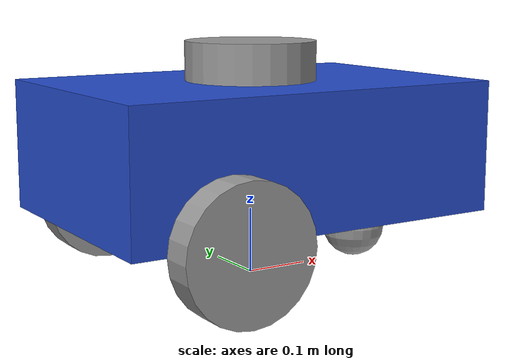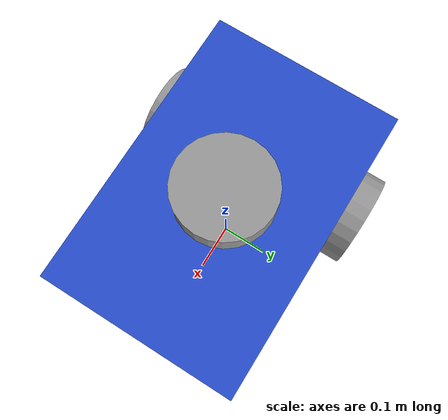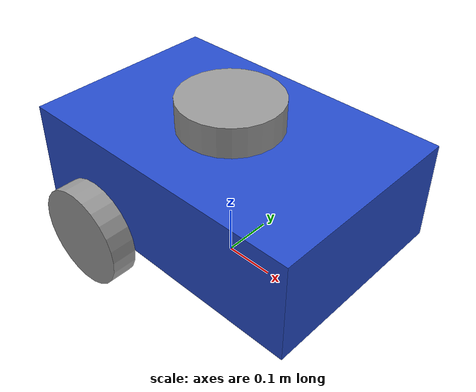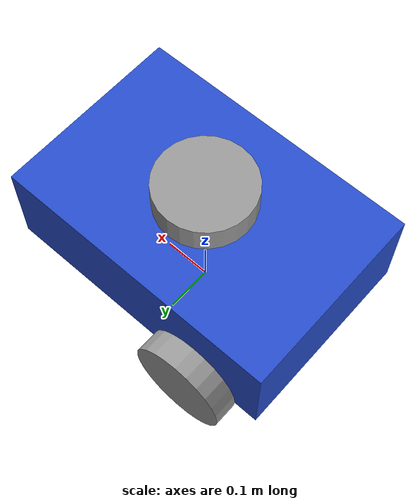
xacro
<?xml version="1.0"?>
<robot xmlns:xacro="http://www.ros.org/wiki/xacro" >

    <xacro:property name="base_length" value="0.6" />
    <xacro:property name="base_width" value="0.4" />
    <xacro:property name="base_height" value="0.2" />
    <xacro:property name="wheel_radius" value="0.1" />
    <xacro:property name="wheel_length" value="0.05" />
    <xacro:property name="scan_wheel_length" value="0.06" />

    <link name="base_footprint" />

    <link name="base_link">
        <visual>
            <geometry>
                <box size="${base_length} ${base_width} ${base_height}"/>
            </geometry>
            <origin xyz="0 0 0.1" rpy="0 0 0" />
            <material name="blue" />
        </visual>
        <collision>
            <geometry>
                <box size="${base_length} ${base_width} ${base_height}"/>
            </geometry>
            <origin xyz="0 0 0.1" rpy="0 0 0" />
        </collision>
        <xacro:box_inertia m="5.0" l="${3*base_length}" w="${3*base_width}" h="${3*base_height}"
                           xyz="0 0 0.1" rpy="0 0 0" />
    </link>

    <link name="base_scan">
        <visual>
            <geometry>
                <cylinder radius="${wheel_radius}" length="${scan_wheel_length}"/>
            </geometry>
            <origin xyz="0 0 0" rpy="0 0 0" />
            <material name="grey" />
        </visual>
        <collision>
            <geometry>
                <cylinder radius="${wheel_radius}" length="${scan_wheel_length}"/>
            </geometry>
            <origin xyz="0 0 0" rpy="0 0 0" />
        </collision>
        <xacro:wheel_inertia m="0.25" r="${3*wheel_radius}"  h="${3*scan_wheel_length}"
                             xyz="0 0 0" rpy="0 0 0" />
    </link>

    <xacro:macro name="wheel_link" params="prefix">
        <link name="${prefix}_wheel_link">
            <visual>
                <geometry>
                    <cylinder radius="${wheel_radius}" length="${wheel_length}" />
                </geometry>
                <origin xyz="0 0 0" rpy="${pi / 2.0} 0 0" />
                <material name="grey" />
            </visual>
            <collision>
                <geometry>
                    <cylinder radius="${wheel_radius}" length="${wheel_length}" />
                </geometry>
                <origin xyz="0 0 0" rpy="${pi / 2.0} 0 0" />
            </collision>
            <xacro:wheel_inertia m="1.0" r="${3*wheel_radius}" h="${3*wheel_length}"
                                 xyz="0 0 0" rpy="${pi / 2.0} 0 0" />
        </link>
    </xacro:macro>

    <xacro:wheel_link prefix="right" />
    <xacro:wheel_link prefix="left" />

    <link name="caster_wheel_link">
        <visual>
            <geometry>
                <sphere radius="${wheel_length}" />
            </geometry>
            <origin xyz="0 0 0" rpy="0 0 0"/>
            <material name="grey" />
        </visual>
        <collision>
            <geometry>
                <sphere radius="${wheel_length}" />
            </geometry>
            <origin xyz="0 0 0" rpy="0 0 0"/>
        </collision>
        <xacro:castor_wheel_inertia m="0.5" r="${3*wheel_length}"
                                    xyz="0 0 0" rpy="0 0 0" />
    </link>

    <joint name="base_joint" type="fixed">
        <parent link="base_footprint" />
        <child link="base_link" />
        <origin xyz="0 0 ${wheel_radius}" rpy="0 0 0" />
    </joint>

    <joint name="base_scan_joint" type="fixed">
        <parent link="base_link"/>
        <child link="base_scan"/>
        <origin xyz="0 0 0.23" rpy="0 0 0"/>
    </joint>

    <joint name="base_right_wheel_joint" type="continuous">
        <parent link="base_link" />
        <child link="right_wheel_link" />
        <origin xyz="${-base_length / 4.0} ${-(base_width + wheel_length) / 2.0} 0" rpy="0 0 0" />
        <axis xyz="0 1 0" />
    </joint>

    <joint name="base_left_wheel_joint" type="continuous">
        <parent link="base_link" />
        <child link="left_wheel_link" />
        <origin xyz="${-base_length / 4.0} ${(base_width + wheel_length) / 2.0} 0" rpy="0 0 0" />
        <axis xyz="0 1 0" />
    </joint>

    <joint name="base_caster_wheel_joint" type="fixed" >
        <parent link="base_link" />
        <child link="caster_wheel_link" />
        <origin xyz="${base_length / 3.0} 0 ${-wheel_length}" rpy="0 0 0"/>
        <axis xyz="0 1 0"/>
    </joint>

</robot>
